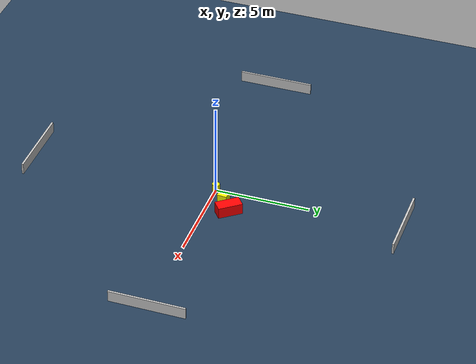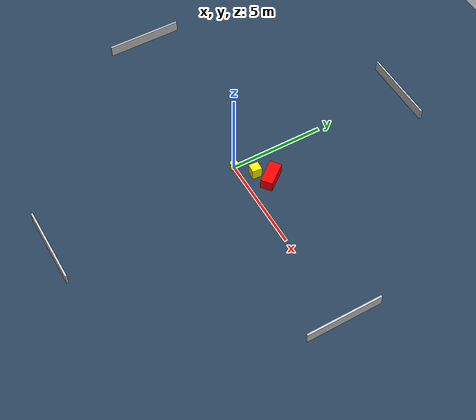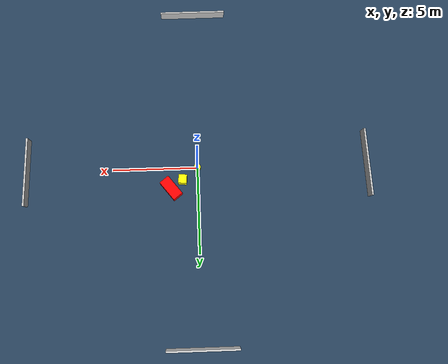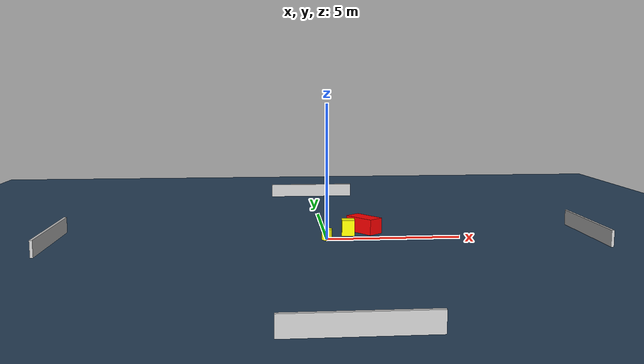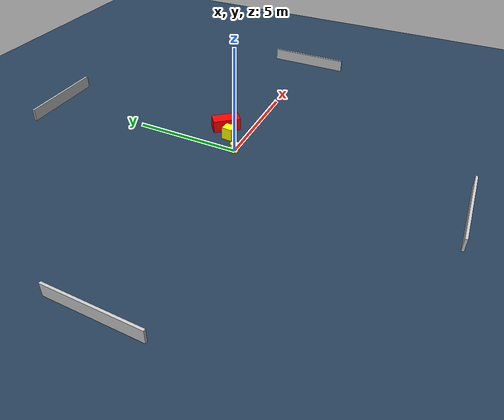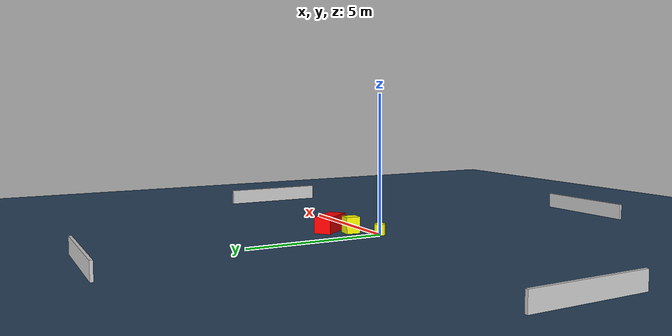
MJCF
<?xml version="1.0" ?>
<mujoco model="generated_environment">
  <option timestep="0.01" integrator="RK4" cone="elliptic"/>
  <default>
    <geom density="1"/>
  </default>
  <asset>
    <texture builtin="gradient" height="3072" name="skybox" rgb1="0.3 0.5 0.7" rgb2="0 0 0" type="skybox" width="512"/>
    <texture builtin="checker" height="300" name="groundplane" rgb1="0.2 0.3 0.4" rgb2="0.1 0.2 0.3" type="2d" width="300"/>
    <material name="groundplane" reflectance="0.2" texrepeat="5 5" texture="groundplane"/>
  </asset>
  <worldbody>
    <light dir="0 0 -1" directional="true" pos="0 0 1.5"/>
    <geom condim="3" friction="0.5 0.005 0.001" material="groundplane" name="floor" pos="0 0 0" size="0 0 0.05" type="plane"/>
    <body name="walls">
      <geom name="wall_1" condim="4" pos="-10.0 0.0 0.3" rgba="0.800000011920929 0.800000011920929 0.800000011920929 1.0" size="0.05 2.0 0.3" type="box"/>
      <geom name="wall_2" condim="4" pos="10.0 0.0 0.3" rgba="0.800000011920929 0.800000011920929 0.800000011920929 1.0" size="0.05 2.0 0.3" type="box"/>
      <geom name="wall_3" condim="4" pos="0.0 -10.0 0.3" rgba="0.800000011920929 0.800000011920929 0.800000011920929 1.0" size="2.0 0.05 0.3" type="box"/>
      <geom name="wall_4" condim="4" pos="0.0 10.0 0.3" rgba="0.800000011920929 0.800000011920929 0.800000011920929 1.0" size="2.0 0.05 0.3" type="box"/>
    </body>
    <body name="robot">
      <joint name="joint_x" type="slide" pos="0 0 0" axis="1 0 0"/>
      <joint name="joint_y" type="slide" pos="0 0 0" axis="0 1 0"/>
      <geom name="robot" type="cylinder" pos="0.0 0.0 0.2" size="0.2 0.2 0.0" mass="5.0" friction="1.0 0.005 0.0001" condim="4" rgba="1.0 1.0 0.0 1.0"/>
    </body>
    <body name="obstacle_1_movable">
      <geom name="obstacle_1_movable" condim="4" pos="0.8725019924103031 0.7121048969145678 0.3" euler="0 0 175.26171861373658" friction="0.0 0.005 0.001" rgba="1.0 1.0 0.0 1.0" size="0.2411060454159999 0.255313562997344 0.3" type="box" mass="0.1"/>
      <joint type="free"/>
    </body>
    <body name="obstacle_2_static">
      <geom name="obstacle_2_static" condim="4" pos="1.5507924403408346 1.2216002381702054 0.3" euler="0 0 38.24049944626311" friction="0.0 0.005 0.001" rgba="1.0 0.0 0.0 1.0" size="0.31642838874861934 0.6472310590059758 0.3" type="box"/>
    </body>
  </worldbody>
  <actuator>
    <motor name="actuator_x" joint="joint_x" gear="1" ctrlrange="-1 1"/>
    <motor name="actuator_y" joint="joint_y" gear="1" ctrlrange="-1 1"/>
  </actuator>
</mujoco>
